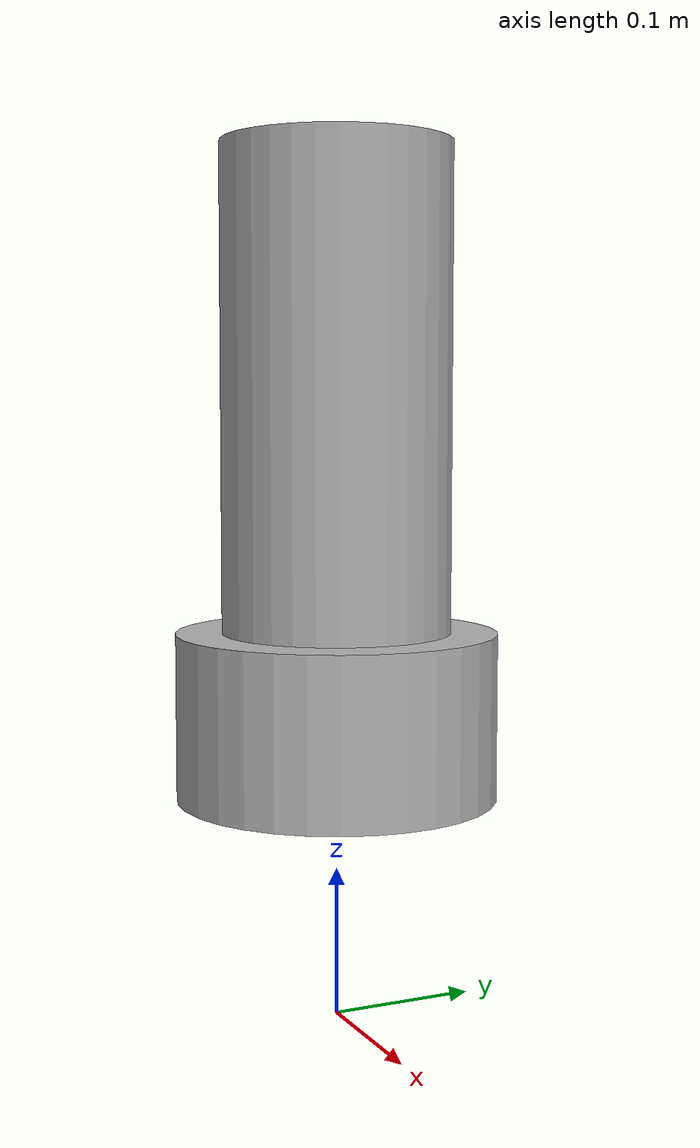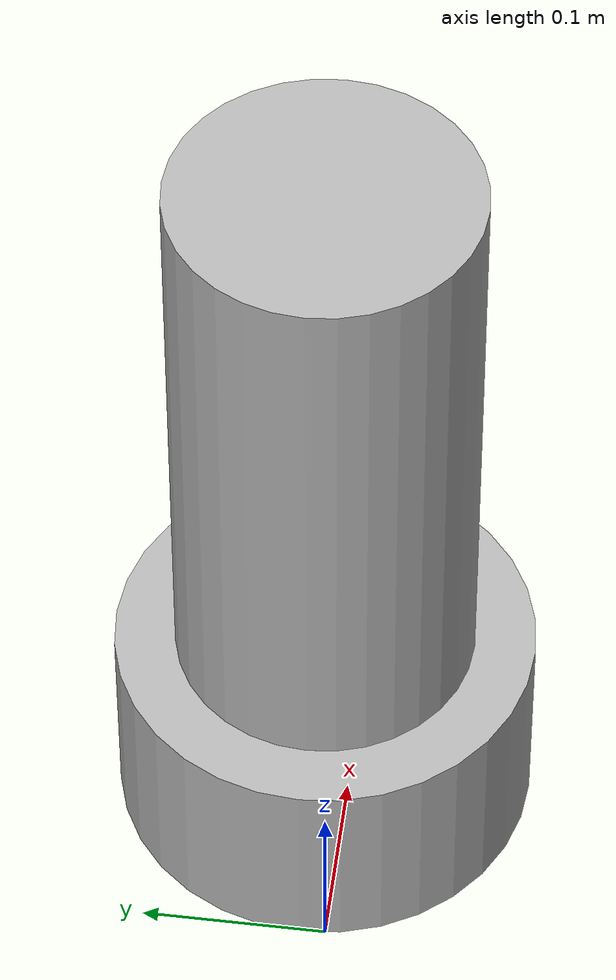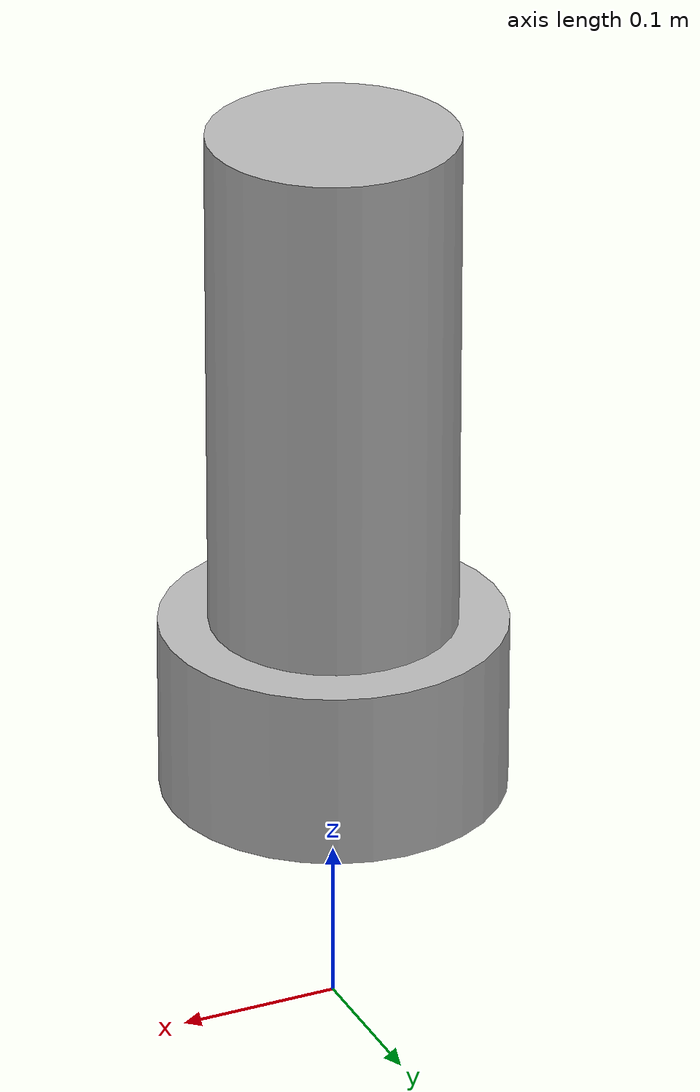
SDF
<?xml version='1.0'?>
<sdf version='1.4'>
  <model name='standpipe'>
    <static>false</static>
    <link name="standpipe">

      <!-- stop the coupling from entering pipe if valve is open -->
      <collision name="collision_stopper">
        <pose>0 0 0.22 0 0 0</pose>
        <geometry>
          <cylinder>
            <radius>0.0759</radius>
            <length>0.1</length>
          </cylinder>
        </geometry>
        <surface>
          <friction>
            <ode>
              <mu>0.6</mu>
              <mu2>0.6</mu2>
            </ode>
          </friction>
        </surface>
      </collision>
      <collision name="collision">
        <pose>0 0 0.15 0 0 0</pose>
        <geometry>
          <mesh>
            <uri>model://vrc_standpipe/meshes/vrc_standpipe.dae</uri>
            <scale>1.1 1.1 1</scale>
          </mesh>
        </geometry>
        <surface>
          <friction>
            <ode>
              <mu>0.6</mu>
              <mu2>0.6</mu2>
            </ode>
          </friction>
        </surface>
      </collision>

      <visual name="visual">
        <pose>0 0 0.15 0 0 0</pose>
        <geometry>
          <mesh>
            <uri>model://vrc_standpipe/meshes/vrc_standpipe.dae</uri>
            <scale>1.1 1.1 1.1</scale>
          </mesh>
        </geometry>
      </visual>
    </link>
    <joint name="world" type="revolute">
      <parent>world</parent>
      <child>standpipe</child>
      <axis>
        <xyz>0 1 0</xyz>
        <limit>
          <lower>0</lower>
          <upper>0</upper>
        </limit>
      </axis>
    </joint>

  </model>
</sdf>
